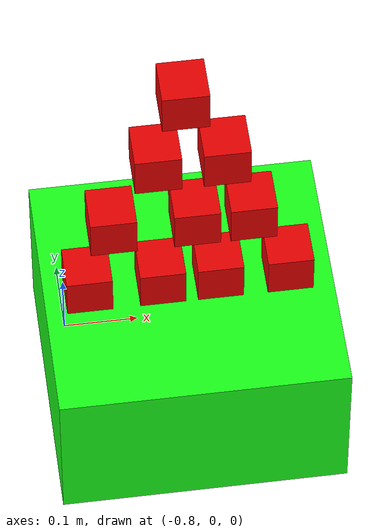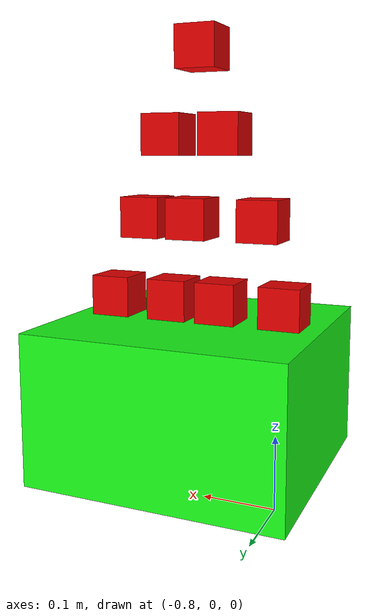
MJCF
<mujoco>
	<worldbody>
		<body pos="-0.645 -0.11 0.11">
			<geom type="box" size="0.19 0.18 0.11" rgba="0.1 1 0.1 1"/>
		</body>
		<body pos="-0.513 -0.11 0.25">
			<joint type="free"/>
			<geom type="box" solimp=".999 .999 .0001" solref=".0001 1" size="0.03 0.03 0.03" rgba="0.9 0 0 1"/>
		</body>
		<body pos="-0.605 -0.11 0.25">
			<joint type="free"/>
			<geom type="box" solimp=".999 .999 .0001" solref=".0001 1" size="0.03 0.03 0.03" rgba="0.9 0 0 1"/>
		</body>
		<body pos="-0.681 -0.11 0.25">
			<joint type="free"/>
			<geom type="box" solimp=".999 .999 .0001" solref=".0001 1" size="0.03 0.03 0.03" rgba="0.9 0 0 1"/>
		</body>
		<body pos="-0.777 -0.11 0.25">
			<joint type="free"/>
			<geom type="box" solimp=".999 .999 .0001" solref=".0001 1" size="0.03 0.03 0.03" rgba="0.9 0 0 1"/>
		</body>
		<body pos="-0.563 -0.11 0.37">
			<joint type="free"/>
			<geom type="box" solimp=".999 .999 .0001" solref=".0001 1" size="0.03 0.03 0.03" rgba="0.9 0 0 1"/>
		</body>
		<body pos="-0.636 -0.11 0.37">
			<joint type="free"/>
			<geom type="box" solimp=".999 .999 .0001" solref=".0001 1" size="0.03 0.03 0.03" rgba="0.9 0 0 1"/>
		</body>
		<body pos="-0.744 -0.11 0.37">
			<joint type="free"/>
			<geom type="box" solimp=".999 .999 .0001" solref=".0001 1" size="0.03 0.03 0.03" rgba="0.9 0 0 1"/>
		</body>
		<body pos="-0.598 -0.11 0.49">
			<joint type="free"/>
			<geom type="box" solimp=".999 .999 .0001" solref=".0001 1" size="0.03 0.03 0.03" rgba="0.9 0 0 1"/>
		</body>
		<body pos="-0.686 -0.11 0.49">
			<joint type="free"/>
			<geom type="box" solimp=".999 .999 .0001" solref=".0001 1" size="0.03 0.03 0.03" rgba="0.9 0 0 1"/>
		</body>
		<body pos="-0.651 -0.11 0.61">
			<joint type="free"/>
			<geom type="box" solimp=".999 .999 .0001" solref=".0001 1" size="0.03 0.03 0.03" rgba="0.9 0 0 1"/>
		</body>
	</worldbody>
</mujoco>
